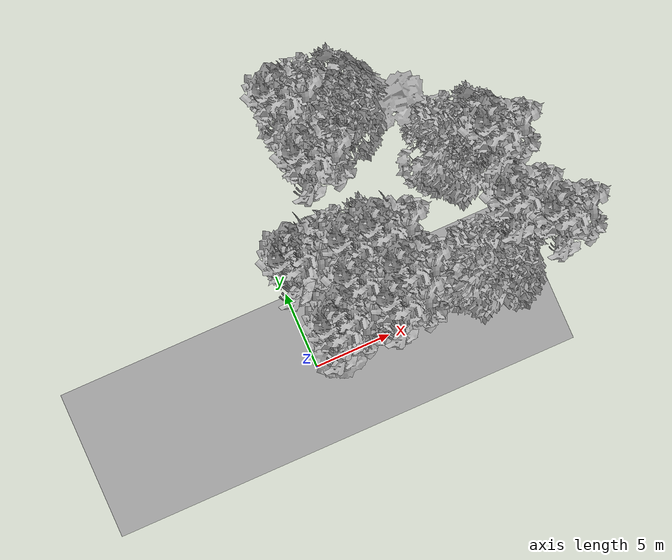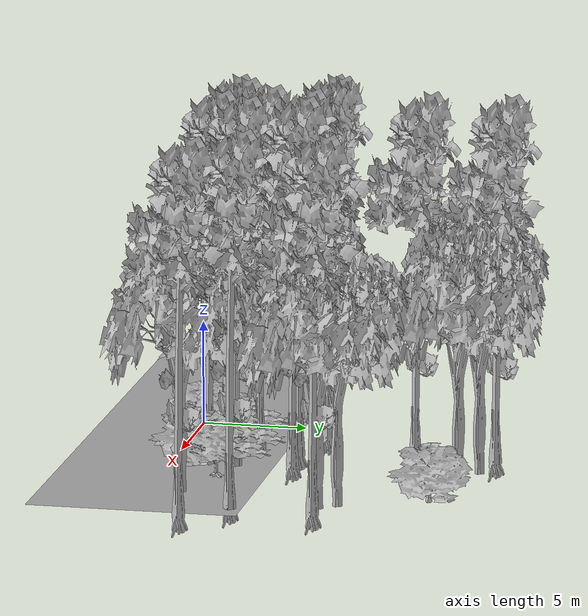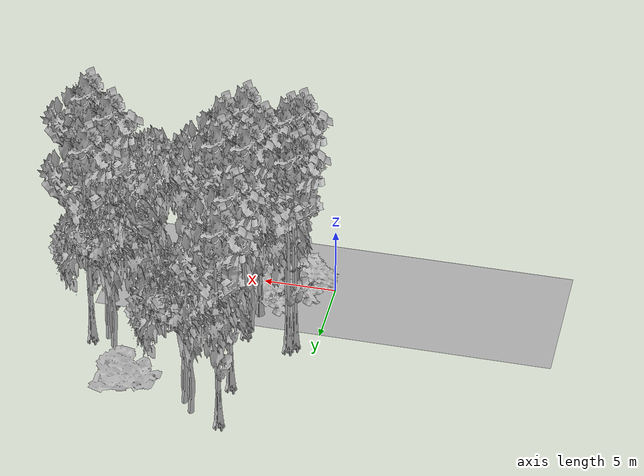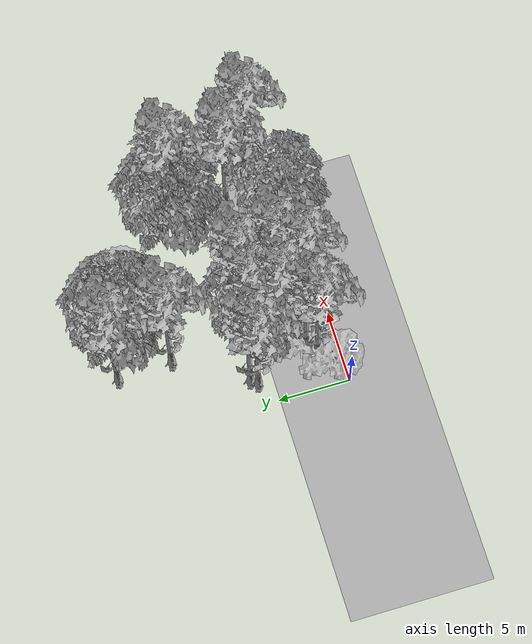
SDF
<sdf version="1.7">
 <world name="default">
  <model name="ground_plane">
   <static>1</static>
   <link name="link">
    <collision name="collision">
     <pose>-50 0 0 0 -0 0</pose>
     <geometry><plane><normal>0 0 1</normal><size>100 100</size></plane></geometry>
     <surface><contact><ode><min_depth>0.01</min_depth><max_vel>0</max_vel></ode></contact></surface>
    </collision>
    <visual name="grass">
     <cast_shadows>0</cast_shadows>
     <geometry>
      <mesh>
       <scale>0.5814285714285714 0.18142857142857144 0.1</scale>
       <uri>file://grass_plane/meshes/grass_plane.dae</uri>
      </mesh>
     </geometry>
    </visual>
   </link>
  </model>
  <model name="Tree 9">
   <static>1</static>
   <pose>6.66912377891871 2.75567999063135 0 1.57079 -0 0</pose>
   <link name="link">
    <collision name="collision">
     <geometry><mesh><scale>4 2.5 4</scale><uri>model://tree_1/meshes/tree_1.obj</uri></mesh></geometry>
    </collision>
    <visual name="visual">
     <geometry><mesh><scale>4 2.5 4</scale><uri>model://tree_1/meshes/tree_1.obj</uri></mesh></geometry>
    </visual>
   </link>
  </model>
  <model name="Tree 13">
   <static>1</static>
   <pose>6.092757079156193 1.5882371681267884 0 1.57079 -0 0</pose>
   <link name="link">
    <collision name="collision">
     <geometry><mesh><scale>3.5 5 3.5</scale><uri>model://tree_9/meshes/tree_9.obj</uri></mesh></geometry>
    </collision>
    <visual name="visual">
     <geometry><mesh><scale>3.5 5 3.5</scale><uri>model://tree_9/meshes/tree_9.obj</uri></mesh></geometry>
    </visual>
   </link>
  </model>
  <model name="Tree 21">
   <static>1</static>
   <pose>16.50094595327164 2.427519827041362 0 1.57079 -0 0</pose>
   <link name="link">
    <collision name="collision">
     <geometry><mesh><scale>3.5 5 3.5</scale><uri>model://tree_9/meshes/tree_9.obj</uri></mesh></geometry>
    </collision>
    <visual name="visual">
     <geometry><mesh><scale>3.5 5 3.5</scale><uri>model://tree_9/meshes/tree_9.obj</uri></mesh></geometry>
    </visual>
   </link>
  </model>
  <model name="Tree 24">
   <static>1</static>
   <pose>4.432076810408617 3.6540542603658963 0 1.57079 -0 0</pose>
   <link name="link">
    <collision name="collision">
     <geometry><mesh><scale>3.5 5 3.5</scale><uri>model://tree_9/meshes/tree_9.obj</uri></mesh></geometry>
    </collision>
    <visual name="visual">
     <geometry><mesh><scale>3.5 5 3.5</scale><uri>model://tree_9/meshes/tree_9.obj</uri></mesh></geometry>
    </visual>
   </link>
  </model>
  <model name="Tree 32">
   <static>1</static>
   <pose>6.818679293317452 5.698471274022392 0 1.57079 -0 0</pose>
   <link name="link">
    <collision name="collision">
     <geometry><mesh><scale>3.5 5 3.5</scale><uri>model://tree_9/meshes/tree_9.obj</uri></mesh></geometry>
    </collision>
    <visual name="visual">
     <geometry><mesh><scale>3.5 5 3.5</scale><uri>model://tree_9/meshes/tree_9.obj</uri></mesh></geometry>
    </visual>
   </link>
  </model>
  <model name="Tree 36">
   <static>1</static>
   <pose>1.845344893363098 6.42693400113162 0 1.57079 -0 0</pose>
   <link name="link">
    <collision name="collision">
     <geometry><mesh><scale>3.5 5 3.5</scale><uri>model://tree_9/meshes/tree_9.obj</uri></mesh></geometry>
    </collision>
    <visual name="visual">
     <geometry><mesh><scale>3.5 5 3.5</scale><uri>model://tree_9/meshes/tree_9.obj</uri></mesh></geometry>
    </visual>
   </link>
  </model>
  <model name="Tree 50">
   <static>1</static>
   <pose>1.49445893963469 0.655789451136437 0 1.57079 -0 0</pose>
   <link name="link">
    <collision name="collision">
     <geometry><mesh><scale>4 2.5 4</scale><uri>model://tree_1/meshes/tree_1.obj</uri></mesh></geometry>
    </collision>
    <visual name="visual">
     <geometry><mesh><scale>4 2.5 4</scale><uri>model://tree_1/meshes/tree_1.obj</uri></mesh></geometry>
    </visual>
   </link>
  </model>
  <model name="Tree 61">
   <static>1</static>
   <pose>7.177415634224687 3.07058367107949 0 1.57079 -0 0</pose>
   <link name="link">
    <collision name="collision">
     <geometry><mesh><scale>3.5 5 3.5</scale><uri>model://tree_9/meshes/tree_9.obj</uri></mesh></geometry>
    </collision>
    <visual name="visual">
     <geometry><mesh><scale>3.5 5 3.5</scale><uri>model://tree_9/meshes/tree_9.obj</uri></mesh></geometry>
    </visual>
   </link>
  </model>
  <model name="Tree 67">
   <static>1</static>
   <pose>4.504799707356192 5.52398454739059 0 1.57079 -0 0</pose>
   <link name="link">
    <collision name="collision">
     <geometry><mesh><scale>3.5 5 3.5</scale><uri>model://tree_2/meshes/tree_2.obj</uri></mesh></geometry>
    </collision>
    <visual name="visual">
     <geometry><mesh><scale>3.5 5 3.5</scale><uri>model://tree_2/meshes/tree_2.obj</uri></mesh></geometry>
    </visual>
   </link>
  </model>
  <model name="Tree 85">
   <static>1</static>
   <pose>14.500298362982072 4.34712832995228 0 1.57079 -0 0</pose>
   <link name="link">
    <collision name="collision">
     <geometry><mesh><scale>3.5 5 3.5</scale><uri>model://tree_9/meshes/tree_9.obj</uri></mesh></geometry>
    </collision>
    <visual name="visual">
     <geometry><mesh><scale>3.5 5 3.5</scale><uri>model://tree_9/meshes/tree_9.obj</uri></mesh></geometry>
    </visual>
   </link>
  </model>
  <model name="Tree 87">
   <static>1</static>
   <pose>11.270732351438653 12.934191611576594 0 1.57079 -0 0</pose>
   <link name="link">
    <collision name="collision">
     <geometry><mesh><scale>3 2 3</scale><uri>model://tree_3/meshes/tree_3.obj</uri></mesh></geometry>
    </collision>
    <visual name="visual">
     <geometry><mesh><scale>3 2 3</scale><uri>model://tree_3/meshes/tree_3.obj</uri></mesh></geometry>
    </visual>
   </link>
  </model>
  <model name="Tree 122">
   <static>1</static>
   <pose>3.0381270781056386 2.1782285079168417 0 1.57079 -0 0</pose>
   <link name="link">
    <collision name="collision">
     <geometry><mesh><scale>3.5 5 3.5</scale><uri>model://tree_9/meshes/tree_9.obj</uri></mesh></geometry>
    </collision>
    <visual name="visual">
     <geometry><mesh><scale>3.5 5 3.5</scale><uri>model://tree_9/meshes/tree_9.obj</uri></mesh></geometry>
    </visual>
   </link>
  </model>
  <model name="Tree 133">
   <static>1</static>
   <pose>14.911517124103923 8.250874375912293 0 1.57079 -0 0</pose>
   <link name="link">
    <collision name="collision">
     <geometry><mesh><scale>3.5 5 3.5</scale><uri>model://tree_9/meshes/tree_9.obj</uri></mesh></geometry>
    </collision>
    <visual name="visual">
     <geometry><mesh><scale>3.5 5 3.5</scale><uri>model://tree_9/meshes/tree_9.obj</uri></mesh></geometry>
    </visual>
   </link>
  </model>
  <model name="Tree 135">
   <static>1</static>
   <pose>7.1539686899551285 0.937622012946079 0 1.57079 -0 0</pose>
   <link name="link">
    <collision name="collision">
     <geometry><mesh><scale>3 2 3</scale><uri>model://tree_3/meshes/tree_3.obj</uri></mesh></geometry>
    </collision>
    <visual name="visual">
     <geometry><mesh><scale>3 2 3</scale><uri>model://tree_3/meshes/tree_3.obj</uri></mesh></geometry>
    </visual>
   </link>
  </model>
  <model name="Tree 138">
   <static>1</static>
   <pose>3.2389324724519426 2.1903958997918025 0 1.57079 -0 0</pose>
   <link name="link">
    <collision name="collision">
     <geometry><mesh><scale>4 2.5 4</scale><uri>model://tree_1/meshes/tree_1.obj</uri></mesh></geometry>
    </collision>
    <visual name="visual">
     <geometry><mesh><scale>4 2.5 4</scale><uri>model://tree_1/meshes/tree_1.obj</uri></mesh></geometry>
    </visual>
   </link>
  </model>
  <model name="Tree 145">
   <static>1</static>
   <pose>1.4725173724040204 5.975008604124479 0 1.57079 -0 0</pose>
   <link name="link">
    <collision name="collision">
     <geometry><mesh><scale>3.5 5 3.5</scale><uri>model://tree_9/meshes/tree_9.obj</uri></mesh></geometry>
    </collision>
    <visual name="visual">
     <geometry><mesh><scale>3.5 5 3.5</scale><uri>model://tree_9/meshes/tree_9.obj</uri></mesh></geometry>
    </visual>
   </link>
  </model>
  <model name="Tree 165">
   <static>1</static>
   <pose>4.4524689933185115 14.879328593428191 0 1.57079 -0 0</pose>
   <link name="link">
    <collision name="collision">
     <geometry><mesh><scale>3.5 5 3.5</scale><uri>model://tree_9/meshes/tree_9.obj</uri></mesh></geometry>
    </collision>
    <visual name="visual">
     <geometry><mesh><scale>3.5 5 3.5</scale><uri>model://tree_9/meshes/tree_9.obj</uri></mesh></geometry>
    </visual>
   </link>
  </model>
  <model name="Tree 168">
   <static>1</static>
   <pose>4.600419699444778 11.11249275743129 0 1.57079 -0 0</pose>
   <link name="link">
    <collision name="collision">
     <geometry><mesh><scale>3.5 5 3.5</scale><uri>model://tree_9/meshes/tree_9.obj</uri></mesh></geometry>
    </collision>
    <visual name="visual">
     <geometry><mesh><scale>3.5 5 3.5</scale><uri>model://tree_9/meshes/tree_9.obj</uri></mesh></geometry>
    </visual>
   </link>
  </model>
  <model name="Tree 177">
   <static>1</static>
   <pose>13.647507297448968 8.271284803538947 0 1.57079 -0 0</pose>
   <link name="link">
    <collision name="collision">
     <geometry><mesh><scale>3.5 5 3.5</scale><uri>model://tree_2/meshes/tree_2.obj</uri></mesh></geometry>
    </collision>
    <visual name="visual">
     <geometry><mesh><scale>3.5 5 3.5</scale><uri>model://tree_2/meshes/tree_2.obj</uri></mesh></geometry>
    </visual>
   </link>
  </model>
  <model name="Tree 208">
   <static>1</static>
   <pose>12.060094612649806 1.571631934328039 0 1.57079 -0 0</pose>
   <link name="link">
    <collision name="collision">
     <geometry><mesh><scale>3.5 5 3.5</scale><uri>model://tree_2/meshes/tree_2.obj</uri></mesh></geometry>
    </collision>
    <visual name="visual">
     <geometry><mesh><scale>3.5 5 3.5</scale><uri>model://tree_2/meshes/tree_2.obj</uri></mesh></geometry>
    </visual>
   </link>
  </model>
  <model name="Tree 238">
   <static>1</static>
   <pose>2.3219661644114638 1.6058067230674347 0 1.57079 -0 0</pose>
   <link name="link">
    <collision name="collision">
     <geometry><mesh><scale>3.5 5 3.5</scale><uri>model://tree_9/meshes/tree_9.obj</uri></mesh></geometry>
    </collision>
    <visual name="visual">
     <geometry><mesh><scale>3.5 5 3.5</scale><uri>model://tree_9/meshes/tree_9.obj</uri></mesh></geometry>
    </visual>
   </link>
  </model>
  <model name="Tree 250">
   <static>1</static>
   <pose>4.930593292734791 5.617541750320363 0 1.57079 -0 0</pose>
   <link name="link">
    <collision name="collision">
     <geometry><mesh><scale>3.5 5 3.5</scale><uri>model://tree_9/meshes/tree_9.obj</uri></mesh></geometry>
    </collision>
    <visual name="visual">
     <geometry><mesh><scale>3.5 5 3.5</scale><uri>model://tree_9/meshes/tree_9.obj</uri></mesh></geometry>
    </visual>
   </link>
  </model>
  <model name="Tree 253">
   <static>1</static>
   <pose>9.078973306599394 2.5572864873746752 0 1.57079 -0 0</pose>
   <link name="link">
    <collision name="collision">
     <geometry><mesh><scale>4 2.5 4</scale><uri>model://tree_1/meshes/tree_1.obj</uri></mesh></geometry>
    </collision>
    <visual name="visual">
     <geometry><mesh><scale>4 2.5 4</scale><uri>model://tree_1/meshes/tree_1.obj</uri></mesh></geometry>
    </visual>
   </link>
  </model>
  <model name="Tree 282">
   <static>1</static>
   <pose>13.062824365881603 9.056064951674443 0 1.57079 -0 0</pose>
   <link name="link">
    <collision name="collision">
     <geometry><mesh><scale>3.5 5 3.5</scale><uri>model://tree_2/meshes/tree_2.obj</uri></mesh></geometry>
    </collision>
    <visual name="visual">
     <geometry><mesh><scale>3.5 5 3.5</scale><uri>model://tree_2/meshes/tree_2.obj</uri></mesh></geometry>
    </visual>
   </link>
  </model>
  <model name="Tree 286">
   <static>1</static>
   <pose>6.975643761373455 13.575864850021375 0 1.57079 -0 0</pose>
   <link name="link">
    <collision name="collision">
     <geometry><mesh><scale>3.5 5 3.5</scale><uri>model://tree_2/meshes/tree_2.obj</uri></mesh></geometry>
    </collision>
    <visual name="visual">
     <geometry><mesh><scale>3.5 5 3.5</scale><uri>model://tree_2/meshes/tree_2.obj</uri></mesh></geometry>
    </visual>
   </link>
  </model>
  <model name="Tree 299">
   <static>1</static>
   <pose>6.321229259833061 14.447461075767606 0 1.57079 -0 0</pose>
   <link name="link">
    <collision name="collision">
     <geometry><mesh><scale>3.5 5 3.5</scale><uri>model://tree_2/meshes/tree_2.obj</uri></mesh></geometry>
    </collision>
    <visual name="visual">
     <geometry><mesh><scale>3.5 5 3.5</scale><uri>model://tree_2/meshes/tree_2.obj</uri></mesh></geometry>
    </visual>
   </link>
  </model>
 </world>
</sdf>
